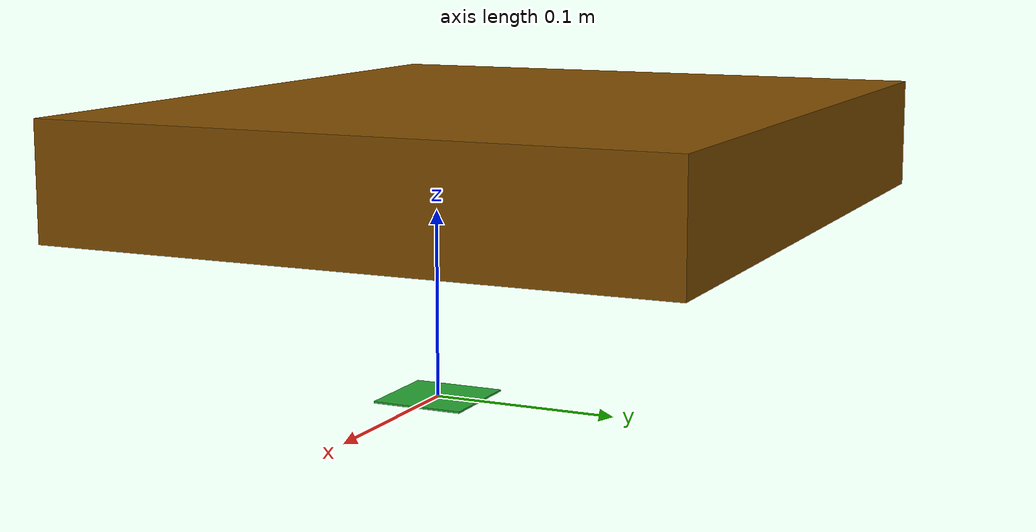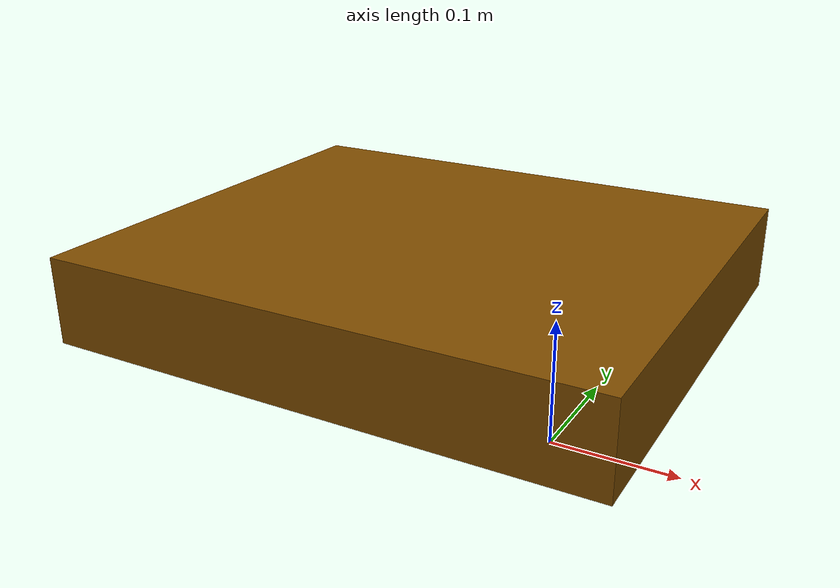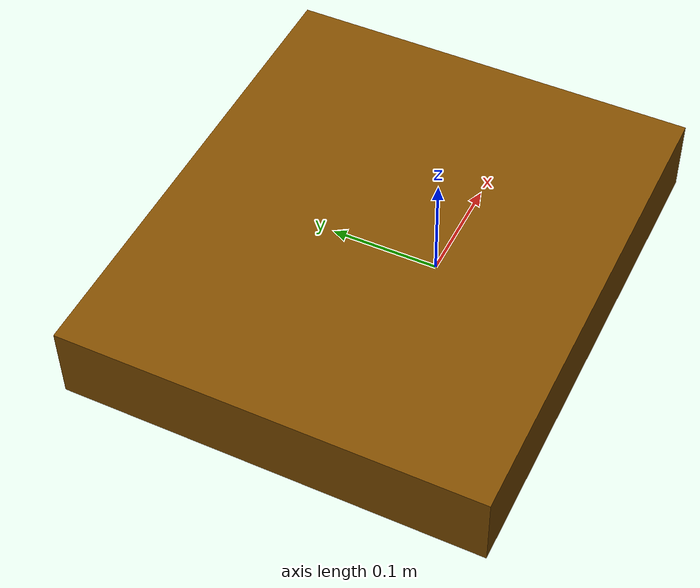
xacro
<?xml version="1.0"?>

<!-- XML namespaces -->
  <robot name="robbie" xmlns:xacro="http://www.ros.org/wiki/xacro">

    <property name="PI" value="3.1415" />
    <property name="M_PI" value="3.14159"/>
    <property name="M_SCALE" value="0.001"/>
    <property name="MESH_EXT" value="stl"/>
    <xacro:include filename="$(find robbie_description)/urdf/robbie_hardware.xacro" />

   <!-- Import all Gazebo-customization elements, including Gazebo colors -->
  <xacro:include filename="$(find robbie_description)/urdf/robbie.gazebo" />

<xacro:my_box name="base_link" lwh="0.41 0.35 0.065" xyz="0 0 -0.032" rpy="0 0 0" mass="0.1" material="Gazebo/FlatBlack">
	        <xacro:gold />
        </xacro:my_box>

 <link name="base_footprint">
      <visual>
        <origin xyz="0 0 0" rpy="0 0 0" />
        <geometry>
          <box size="0.05 0.05 0.001" />
        </geometry>
        <material name="TransparentGreen" />
      </visual>
  </link>

<!-- ##############################   joints ##################333333-->
<joint name="base_footprint_joint" type="fixed">
    	<parent link="base_footprint" />
    	<child link="base_link" />
    	<origin xyz="-0.1 0 0.15" rpy="0 0 0" />
	</joint>

<gazebo reference="robbie">
  	</gazebo>

</robot>

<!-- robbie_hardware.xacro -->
<robot name="robbie" xmlns:xacro="http://ros.org/wiki/xacro">

  <!-- ============================  A Few Color Macros  ============================ -->

	<xacro:macro name="black">
		<material name="black">
			<color rgba="0.1 0.1 0.1 1.0"/>
		</material>
	</xacro:macro>

	<xacro:macro name="White">
		<material name="White">
			<color rgba="1.0 1.0 1.0 1.0"/>
		</material>
	</xacro:macro>

	<xacro:macro name="grey1">
		<material name="grey1">
			<color rgba="0.75 0.75 0.75 1.0"/>
		</material>
	</xacro:macro>

	<xacro:macro name="grey2">
		<material name="grey2">
			<color rgba="0.6 0.6 0.6 1.0"/>
		</material>
	</xacro:macro>

	<xacro:macro name="grey3">
		<material name="grey3">
			<color rgba="0.8 0.8 0.8 1.0"/>
		</material>
	</xacro:macro>

	<xacro:macro name="ax12_color">
		<material name="ax12_color">
			<color rgba="0.2 0.2 0.2 1.0"/>
		</material>
	</xacro:macro>

	<xacro:macro name="bracket_color">
		<material name="bracket_color">
			<color rgba="0.9 0.9 0.9 1.0"/>
		</material>
	</xacro:macro>

        <xacro:macro name="cyan1">
		<material name="cyan1">
			<color rgba="0 0.9 0.9 1.0"/>
		</material>
	</xacro:macro>

	<xacro:macro name="cyan2">
		<material name="cyan2">
	     <color rgba="0 0.7 0.7 1.0"/>
		</material>
	</xacro:macro>

	<xacro:macro name="cyan3">
		<material name="cyan3">
	     <color rgba="0 0.5 0.5 1.0"/>
		</material>
	</xacro:macro>

        <xacro:macro name="yellow2">
		<material name="yellow2">
			<color rgba="0.8 0.9 0 1.0"/>
		</material>
	</xacro:macro>

        <xacro:macro name="gold">
		<material name="gold">
			<color rgba="0.5 0.3 0 1.0"/>
		</material>
	</xacro:macro>

	<xacro:macro name="green1">
		<material name="green1">
			<color rgba="0 1 0 1.0"/>
		</material>
	</xacro:macro>

	<xacro:macro name="green2">
		<material name="green2">
			<color rgba="0.1 0.8 0 1.0"/>
		</material>
	</xacro:macro>

        <xacro:macro name="blue1">
		<material name="blue1">
			<color rgba="0 0 0.9 1.0"/>
		</material>
	</xacro:macro>

        <xacro:macro name="ax12_color">
		<material name="ax12_color">
			<color rgba="0.1 0.1 0.1 1.0"/>
		</material>
	</xacro:macro>

 	<!-- ============================   A Few Shape Macros  ============================ -->
	<xacro:macro name="ax12" params="name xyz rpy">
		<link name="${name}">
			<visual>
				<origin xyz="${xyz}" rpy="${rpy}" />
				<geometry>
					<mesh filename="package://robbie_description/meshes/ax12_box2.${MESH_EXT}" scale="${M_SCALE} ${M_SCALE} ${M_SCALE}"/>
				</geometry>
				<xacro:ax12_color />
             </visual>

             <collision>
				<origin xyz="${xyz}" rpy="${rpy}" />
				<geometry>

					<mesh filename="package://robbie_description/meshes/ax12_box2.${MESH_EXT}" scale="${M_SCALE} ${M_SCALE} ${M_SCALE}"/>

				</geometry>
             </collision>
             <xacro:default_inertial mass="0.055" />
        </link>
        <xacro:default_gazebo name="${name}" material="Gazebo/FlatBlack" />
	</xacro:macro>

	<xacro:macro name="F2_bracket" params="name xyz rpy">
		<link name="${name}">
			<visual>
				<origin xyz="${xyz}" rpy="${rpy}" />
				<geometry>
          			<mesh filename="package://robbie_description/meshes/F2.${MESH_EXT}" scale="${M_SCALE} ${M_SCALE} ${M_SCALE}"/>
				</geometry>
				<xacro:bracket_color />
             </visual>
             <collision>
				<origin xyz="${xyz}" rpy="${rpy}" />
					<geometry>

          				<mesh filename="package://robbie_description/meshes/F2.${MESH_EXT}" scale="${M_SCALE} ${M_SCALE} ${M_SCALE}"/>

					</geometry>
             </collision>
             <xacro:default_inertial mass="0.02" />
        </link>
        <xacro:default_gazebo name="${name}" material="Gazebo/White" />
	</xacro:macro>

	<xacro:macro name="F3_bracket" params="name xyz rpy">
		<link name="${name}">
			<visual>
				<origin xyz="${xyz}" rpy="${rpy}" />
				<geometry>
          			<mesh filename="package://robbie_description/meshes/F3.${MESH_EXT}" scale="${M_SCALE} ${M_SCALE} ${M_SCALE}"/>
				</geometry><material name="grey1">
			<color rgba="0.75 0.75 0.75 1.0"/>
		</material>
				<xacro:bracket_color />
             </visual>
             <collision>
				<origin xyz="${xyz}" rpy="${rpy}" />
					<geometry>

          				<mesh filename="package://robbie_description/meshes/F3.${MESH_EXT}" scale="${M_SCALE} ${M_SCALE} ${M_SCALE}"/>

					</geometry>
             </collision>
             <xacro:default_inertial mass="0.01" />
        </link>
        <xacro:default_gazebo name="${name}" material="Gazebo/White" />
	</xacro:macro>

	<xacro:macro name="bracket_f3" params="name xyz rpy">
		<link name="${name}">
			<visual>
				<origin xyz="${xyz}" rpy="${rpy}" />
				<geometry>
					<box size="0.025 0.04 0.006" />
				</geometry>
				<xacro:bracket_color />
             </visual>
             <collision>
				<origin xyz="${xyz}" rpy="${rpy}" />
					<geometry>
						<box size="0.025 0.04 0.006" />
					</geometry>
             </collision>
             <xacro:default_inertial mass="0.02" />
        </link>
        <xacro:default_gazebo name="${name}" material="Gazebo/White" />
	</xacro:macro>

	<xacro:macro name="bracket2" params="name xyz rpy">
		<link name="${name}">
			<visual>
				<origin xyz="${xyz}" rpy="${rpy}" />
				<geometry>
					<box size="0.05 0.115 0.07" />
				</geometry>
				<xacro:bracket_color />
             </visual>
             <collision>
				<origin xyz="${xyz}" rpy="${rpy}" />
					<geometry>
					<box size="0.05 0.115 0.07" />
					</geometry>
             </collision>
             <xacro:default_inertial mass="0.01" />
        </link>
        <xacro:default_gazebo name="${name}" material="Gazebo/White" />
	</xacro:macro>

        <xacro:macro name="bracket3" params="name xyz rpy">
		<link name="${name}">
			<visual>
				<origin xyz="${xyz}" rpy="${rpy}" />
				<geometry>
					<box size="0.05 0.032 0.005" />
				</geometry>
				<xacro:bracket_color />
             </visual>
             <collision>
				<origin xyz="${xyz}" rpy="${rpy}" />
					<geometry>
					<box size="0.05 0.032 0.005" />
					</geometry>
             </collision>
             <xacro:default_inertial mass="0.01" />
        </link>
        <xacro:default_gazebo name="${name}" material="Gazebo/White" />
	</xacro:macro>

        <xacro:macro name="my_box" params="name lwh xyz rpy mass material *rviz_color">
		<link name="${name}">
			<visual>
				<origin xyz="${xyz}" rpy="${rpy}" />
				<geometry>
					<box size="${lwh}" />
				</geometry>
			    <xacro:insert_block name="rviz_color" />
             </visual>
             <collision>
				<origin xyz="${xyz}" rpy="${rpy}" />
					<geometry>
						<box size="${lwh}" />
					</geometry>
              <xacro:default_inertial mass="0.01" />
             </collision>

        </link>

        <xacro:default_gazebo name="${name}" material="${material}" />
	</xacro:macro>

	<xacro:macro name="my_cylinder" params="name l r xyz rpy mass material *rviz_color">
		<link name="${name}">
			<visual>
				<origin xyz="${xyz}" rpy="${rpy}" />
				<geometry>
					<cylinder length="${l}" radius="${r}" />
				</geometry>
            	<xacro:insert_block name="rviz_color" />
            </visual>
            <collision>
				<origin xyz="${xyz}" rpy="${rpy}" />
					<geometry>
						<cylinder length="${l}" radius="${r}" />
					</geometry>
            </collision>
            <xacro:default_inertial mass="${mass}" />
        </link>
        <xacro:default_gazebo name="${name}" material="${material}" />
	</xacro:macro>

    <xacro:macro name="default_inertial" params="mass">
		<inertial>
			<mass value="${mass}" />
			<inertia ixx="0.0001" ixy="0.0" ixz="0.0"
                     iyy="0.0001" iyz="0.0"
                     izz="0.0001" />
			</inertial>
    </xacro:macro>

    <xacro:macro name="default_gazebo" params="name material">
 		<gazebo reference="${name}">
			<material>${material}</material>
			<selfCollide>false</selfCollide>
			<turnGravityOff>false</turnGravityOff>
		</gazebo>
    </xacro:macro>

</robot>
